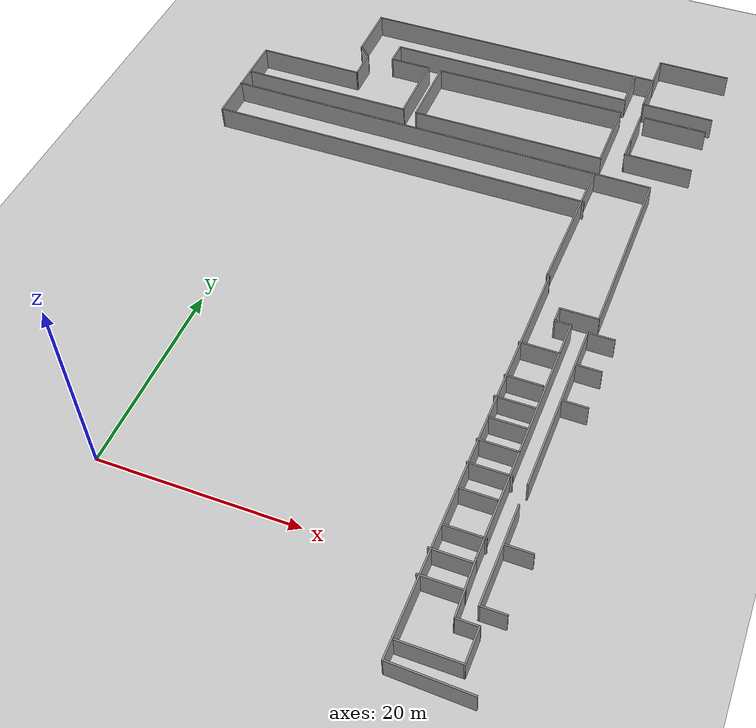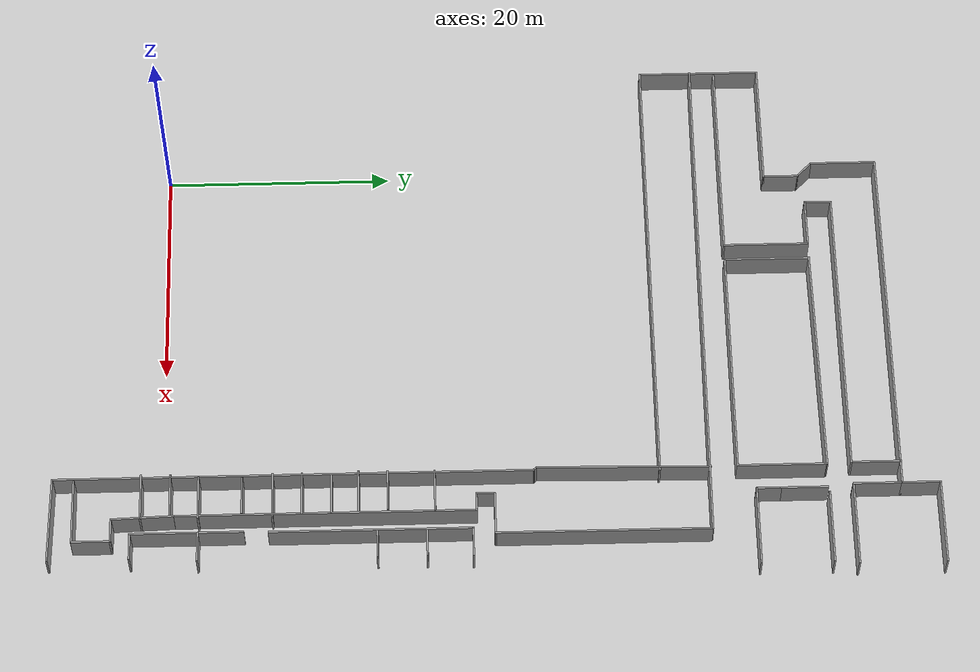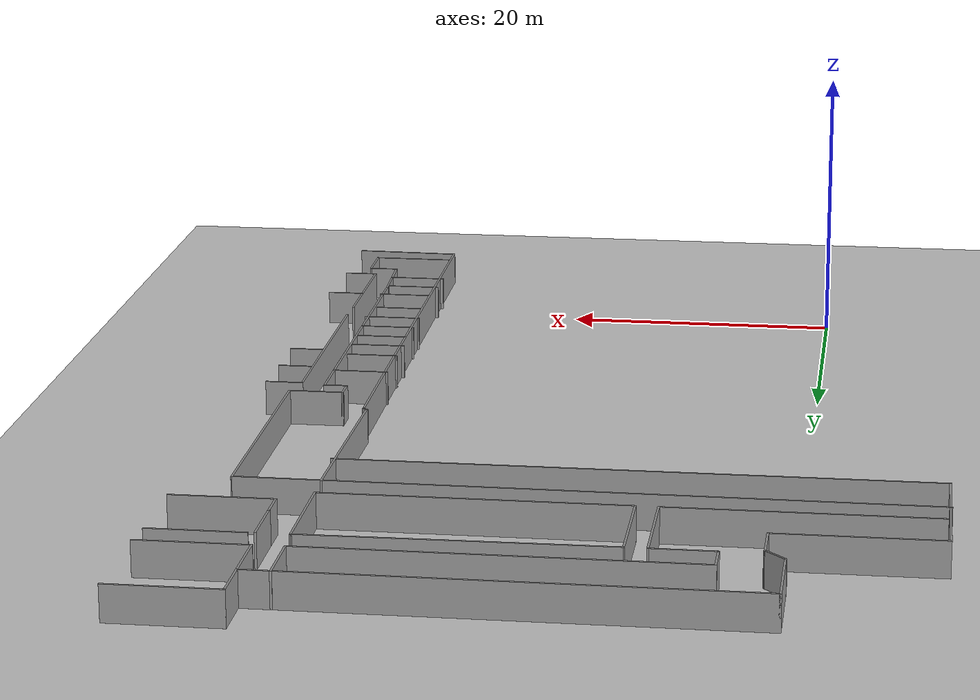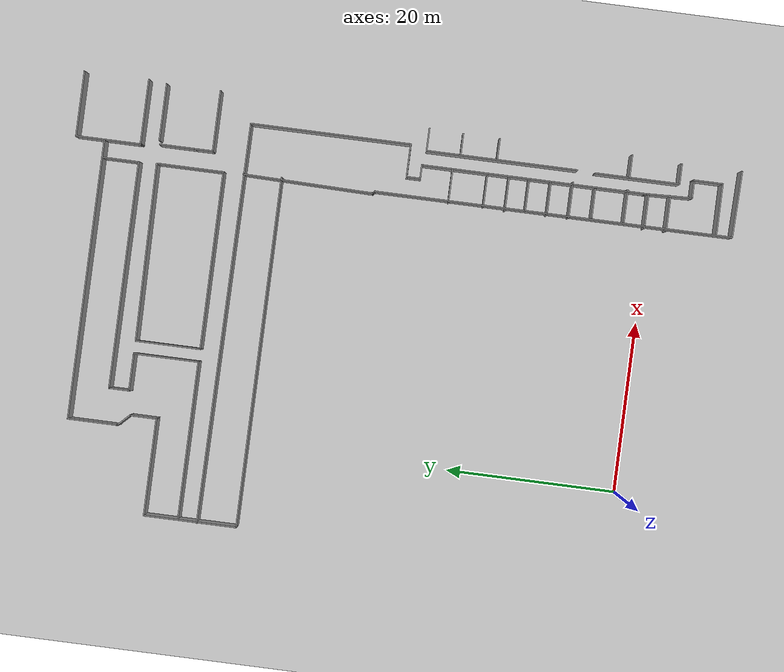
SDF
<sdf version="1.5">
 <world name="default">
  <model name="ground_plane">
   <static>1</static>
   <link name="link">
    <collision name="collision">
     <geometry><plane><normal>0 0 1</normal><size>100 100</size></plane></geometry>
     <surface><friction><ode><mu>100</mu><mu2>50</mu2></ode></friction></surface>
    </collision>
    <visual name="visual">
     <cast_shadows>0</cast_shadows>
     <geometry><plane><normal>0 0 1</normal><size>100 100</size></plane></geometry>
     <material>
      <script><uri>file://media/materials/scripts/gazebo.material</uri><name>Gazebo/Grey</name></script>
     </material>
    </visual>
   </link>
  </model>
  <model name="Wean4Complete">
   <pose>41 33 0 0 -0 0</pose>
   <link name="Wall_127">
    <collision name="Wall_127_Collision">
     <geometry><box><size>2.5 0.15 2.5</size></box></geometry>
     <pose>0 0 1.25 0 -0 0</pose>
    </collision>
    <visual name="Wall_127_Visual">
     <pose>0 0 1.25 0 -0 0</pose>
     <geometry><box><size>2.5 0.15 2.5</size></box></geometry>
     <material>
      <script><uri>file://media/materials/scripts/gazebo.material</uri><name>Gazebo/Grey</name></script>
      <ambient>1 1 1 1</ambient>
     </material>
    </visual>
    <pose>-2.79715 -14.197 0 0 -0 3.14159</pose>
   </link>
   <link name="Wall_129">
    <collision name="Wall_129_Collision">
     <geometry><box><size>2.5 0.15 2.5</size></box></geometry>
     <pose>0 0 1.25 0 -0 0</pose>
    </collision>
    <visual name="Wall_129_Visual">
     <pose>0 0 1.25 0 -0 0</pose>
     <geometry><box><size>2.5 0.15 2.5</size></box></geometry>
     <material>
      <script><uri>file://media/materials/scripts/gazebo.material</uri><name>Gazebo/Grey</name></script>
      <ambient>1 1 1 1</ambient>
     </material>
    </visual>
    <pose>-2.79715 -9.8853 0 0 -0 3.14159</pose>
   </link>
   <link name="Wall_131">
    <collision name="Wall_131_Collision">
     <geometry><box><size>4 0.15 2.5</size></box></geometry>
     <pose>0 0 1.25 0 -0 0</pose>
    </collision>
    <visual name="Wall_131_Visual">
     <pose>0 0 1.25 0 -0 0</pose>
     <geometry><box><size>4 0.15 2.5</size></box></geometry>
     <material>
      <script><uri>file://media/materials/scripts/gazebo.material</uri><name>Gazebo/Grey</name></script>
      <ambient>1 1 1 1</ambient>
     </material>
    </visual>
    <pose>-7.80722 -9.16669 0 0 -0 0</pose>
   </link>
   <link name="Wall_132">
    <collision name="Wall_132_Collision">
     <geometry><box><size>0.15 0.15 2.5</size></box></geometry>
     <pose>0 0 1.25 0 -0 0</pose>
    </collision>
    <visual name="Wall_132_Visual">
     <pose>0 0 1.25 0 -0 0</pose>
     <geometry><box><size>0.15 0.15 2.5</size></box></geometry>
     <material>
      <script><uri>file://media/materials/scripts/gazebo.material</uri><name>Gazebo/Grey</name></script>
      <ambient>1 1 1 1</ambient>
     </material>
    </visual>
    <pose>-5.88222 -9.16669 0 0 -0 0</pose>
   </link>
   <link name="Wall_134">
    <collision name="Wall_134_Collision">
     <geometry><box><size>3.75 0.15 2.5</size></box></geometry>
     <pose>0 0 1.25 0 -0 0</pose>
    </collision>
    <visual name="Wall_134_Visual">
     <pose>0 0 1.25 0 -0 0</pose>
     <geometry><box><size>3.75 0.15 2.5</size></box></geometry>
     <material>
      <script><uri>file://media/materials/scripts/gazebo.material</uri><name>Gazebo/Grey</name></script>
      <ambient>1 1 1 1</ambient>
     </material>
    </visual>
    <pose>-7.93222 -13.2731 0 0 -0 0</pose>
   </link>
   <link name="Wall_136">
    <collision name="Wall_136_Collision">
     <geometry><box><size>4 0.15 2.5</size></box></geometry>
     <pose>0 0 1.25 0 -0 0</pose>
    </collision>
    <visual name="Wall_136_Visual">
     <pose>0 0 1.25 0 -0 0</pose>
     <geometry><box><size>4 0.15 2.5</size></box></geometry>
     <material>
      <script><uri>file://media/materials/scripts/gazebo.material</uri><name>Gazebo/Grey</name></script>
      <ambient>1 1 1 1</ambient>
     </material>
    </visual>
    <pose>-7.90988 -15.8395 0 0 -0 0</pose>
   </link>
   <link name="Wall_138">
    <collision name="Wall_138_Collision">
     <geometry><box><size>3.75 0.15 2.5</size></box></geometry>
     <pose>0 0 1.25 0 -0 0</pose>
    </collision>
    <visual name="Wall_138_Visual">
     <pose>0 0 1.25 0 -0 0</pose>
     <geometry><box><size>3.75 0.15 2.5</size></box></geometry>
     <material>
      <script><uri>file://media/materials/scripts/gazebo.material</uri><name>Gazebo/Grey</name></script>
      <ambient>1 1 1 1</ambient>
     </material>
    </visual>
    <pose>-7.7269 -18.2007 0 0 -0 0</pose>
   </link>
   <link name="Wall_140">
    <collision name="Wall_140_Collision">
     <geometry><box><size>4.25 0.15 2.5</size></box></geometry>
     <pose>0 0 1.25 0 -0 0</pose>
    </collision>
    <visual name="Wall_140_Visual">
     <pose>0 0 1.25 0 -0 0</pose>
     <geometry><box><size>4.25 0.15 2.5</size></box></geometry>
     <material>
      <script><uri>file://media/materials/scripts/gazebo.material</uri><name>Gazebo/Grey</name></script>
      <ambient>1 1 1 1</ambient>
     </material>
    </visual>
    <pose>-7.68222 -23.3336 0 0 -0 0</pose>
   </link>
   <link name="Wall_142">
    <collision name="Wall_142_Collision">
     <geometry><box><size>4 0.15 2.5</size></box></geometry>
     <pose>0 0 1.25 0 -0 0</pose>
    </collision>
    <visual name="Wall_142_Visual">
     <pose>0 0 1.25 0 -0 0</pose>
     <geometry><box><size>4 0.15 2.5</size></box></geometry>
     <material>
      <script><uri>file://media/materials/scripts/gazebo.material</uri><name>Gazebo/Grey</name></script>
      <ambient>1 1 1 1</ambient>
     </material>
    </visual>
    <pose>-7.80722 -20.7672 0 0 -0 0</pose>
   </link>
   <link name="Wall_144">
    <collision name="Wall_144_Collision">
     <geometry><box><size>4 0.15 2.5</size></box></geometry>
     <pose>0 0 1.25 0 -0 0</pose>
    </collision>
    <visual name="Wall_144_Visual">
     <pose>0 0 1.25 0 -0 0</pose>
     <geometry><box><size>4 0.15 2.5</size></box></geometry>
     <material>
      <script><uri>file://media/materials/scripts/gazebo.material</uri><name>Gazebo/Grey</name></script>
      <ambient>1 1 1 1</ambient>
     </material>
    </visual>
    <pose>-7.6019 -29.8012 0 0 -0 0</pose>
   </link>
   <link name="Wall_146">
    <collision name="Wall_146_Collision">
     <geometry><box><size>3.5 0.15 2.5</size></box></geometry>
     <pose>0 0 1.25 0 -0 0</pose>
    </collision>
    <visual name="Wall_146_Visual">
     <pose>0 0 1.25 0 -0 0</pose>
     <geometry><box><size>3.5 0.15 2.5</size></box></geometry>
     <material>
      <script><uri>file://media/materials/scripts/gazebo.material</uri><name>Gazebo/Grey</name></script>
      <ambient>1 1 1 1</ambient>
     </material>
    </visual>
    <pose>-7.74924 -26.0028 0 0 -0 0</pose>
   </link>
   <link name="Wall_148">
    <collision name="Wall_148_Collision">
     <geometry><box><size>4 0.15 2.5</size></box></geometry>
     <pose>0 0 1.25 0 -0 0</pose>
    </collision>
    <visual name="Wall_148_Visual">
     <pose>0 0 1.25 0 -0 0</pose>
     <geometry><box><size>4 0.15 2.5</size></box></geometry>
     <material>
      <script><uri>file://media/materials/scripts/gazebo.material</uri><name>Gazebo/Grey</name></script>
      <ambient>1 1 1 1</ambient>
     </material>
    </visual>
    <pose>-7.90988 -32.265 0 0 -0 0</pose>
   </link>
   <link name="Wall_150">
    <collision name="Wall_150_Collision">
     <geometry><box><size>4.25 0.15 2.5</size></box></geometry>
     <pose>0 0 1.25 0 -0 0</pose>
    </collision>
    <visual name="Wall_150_Visual">
     <pose>0 0 1.25 0 -0 0</pose>
     <geometry><box><size>4.25 0.15 2.5</size></box></geometry>
     <material>
      <script><uri>file://media/materials/scripts/gazebo.material</uri><name>Gazebo/Grey</name></script>
      <ambient>1 1 1 1</ambient>
     </material>
    </visual>
    <pose>-7.78488 -34.8315 0 0 -0 0</pose>
   </link>
   <link name="Wall_157">
    <collision name="Wall_157_Collision">
     <geometry><box><size>2.75 0.15 2.5</size></box></geometry>
     <pose>0 0 1.25 0 -0 0</pose>
    </collision>
    <visual name="Wall_157_Visual">
     <pose>0 0 1.25 0 -0 0</pose>
     <geometry><box><size>2.75 0.15 2.5</size></box></geometry>
     <material>
      <script><uri>file://media/materials/scripts/gazebo.material</uri><name>Gazebo/Grey</name></script>
      <ambient>1 1 1 1</ambient>
     </material>
    </visual>
    <pose>-2.88863 -29.8012 0 0 -0 0</pose>
   </link>
   <link name="Wall_16">
    <collision name="Wall_16_Collision">
     <geometry><box><size>42.25 0.15 2.5</size></box></geometry>
     <pose>0 0 1.25 0 -0 0</pose>
    </collision>
    <visual name="Wall_16_Visual">
     <pose>0 0 1.25 0 -0 0</pose>
     <geometry><box><size>42.25 0.15 2.5</size></box></geometry>
     <material>
      <script><uri>file://media/materials/scripts/gazebo.material</uri><name>Gazebo/Grey</name></script>
      <ambient>1 1 1 1</ambient>
     </material>
    </visual>
    <pose>-9.60806 -21.5344 0 0 -0 1.5708</pose>
   </link>
   <link name="Wall_163">
    <collision name="Wall_163_Collision">
     <geometry><box><size>17.8814 0.15 2.5</size></box></geometry>
     <pose>0 0 1.25 0 -0 0</pose>
    </collision>
    <visual name="Wall_163_Visual">
     <pose>0 0 1.25 0 -0 0</pose>
     <geometry><box><size>17.8814 0.15 2.5</size></box></geometry>
     <material>
      <script><uri>file://media/materials/scripts/gazebo.material</uri><name>Gazebo/Grey</name></script>
      <ambient>1 1 1 1</ambient>
     </material>
    </visual>
    <pose>-4.11949 -14.7473 0 0 -0 1.5708</pose>
   </link>
   <link name="Wall_17">
    <collision name="Wall_17_Collision">
     <geometry><box><size>0.5 0.15 2.5</size></box></geometry>
     <pose>0 0 1.25 0 -0 0</pose>
    </collision>
    <visual name="Wall_17_Visual">
     <pose>0 0 1.25 0 -0 0</pose>
     <geometry><box><size>0.5 0.15 2.5</size></box></geometry>
     <material>
      <script><uri>file://media/materials/scripts/gazebo.material</uri><name>Gazebo/Grey</name></script>
      <ambient>1 1 1 1</ambient>
     </material>
    </visual>
    <pose>-9.73181 -0.360694 0 0 -0 2.35619</pose>
   </link>
   <link name="Wall_37">
    <collision name="Wall_37_Collision">
     <geometry><box><size>19 0.15 2.5</size></box></geometry>
     <pose>0 0 1.25 0 -0 0</pose>
    </collision>
    <visual name="Wall_37_Visual">
     <pose>0 0 1.25 0 -0 0</pose>
     <geometry><box><size>19 0.15 2.5</size></box></geometry>
     <material>
      <script><uri>file://media/materials/scripts/gazebo.material</uri><name>Gazebo/Grey</name></script>
      <ambient>1 1 1 1</ambient>
     </material>
    </visual>
    <pose>-3.59519 5.47964 0 0 0 -1.5708</pose>
   </link>
   <link name="Wall_38">
    <collision name="Wall_38_Collision">
     <geometry><box><size>4 0.15 2.5</size></box></geometry>
     <pose>0 0 1.25 0 -0 0</pose>
    </collision>
    <visual name="Wall_38_Visual">
     <pose>0 0 1.25 0 -0 0</pose>
     <geometry><box><size>4 0.15 2.5</size></box></geometry>
     <material>
      <script><uri>file://media/materials/scripts/gazebo.material</uri><name>Gazebo/Grey</name></script>
      <ambient>1 1 1 1</ambient>
     </material>
    </visual>
    <pose>-5.52019 -3.94536 0 0 -0 3.14159</pose>
   </link>
   <link name="Wall_39">
    <collision name="Wall_39_Collision">
     <geometry><box><size>1.75 0.15 2.5</size></box></geometry>
     <pose>0 0 1.25 0 -0 0</pose>
    </collision>
    <visual name="Wall_39_Visual">
     <pose>0 0 1.25 0 -0 0</pose>
     <geometry><box><size>1.75 0.15 2.5</size></box></geometry>
     <material>
      <script><uri>file://media/materials/scripts/gazebo.material</uri><name>Gazebo/Grey</name></script>
      <ambient>1 1 1 1</ambient>
     </material>
    </visual>
    <pose>-7.44519 -4.74536 0 0 0 -1.5708</pose>
   </link>
   <link name="Wall_40">
    <collision name="Wall_40_Collision">
     <geometry><box><size>1.75 0.15 2.5</size></box></geometry>
     <pose>0 0 1.25 0 -0 0</pose>
    </collision>
    <visual name="Wall_40_Visual">
     <pose>0 0 1.25 0 -0 0</pose>
     <geometry><box><size>1.75 0.15 2.5</size></box></geometry>
     <material>
      <script><uri>file://media/materials/scripts/gazebo.material</uri><name>Gazebo/Grey</name></script>
      <ambient>1 1 1 1</ambient>
     </material>
    </visual>
    <pose>-6.64519 -5.54536 0 0 -0 0</pose>
   </link>
   <link name="Wall_41">
    <collision name="Wall_41_Collision">
     <geometry><box><size>26.5 0.15 2.5</size></box></geometry>
     <pose>0 0 1.25 0 -0 0</pose>
    </collision>
    <visual name="Wall_41_Visual">
     <pose>0 0 1.25 0 -0 0</pose>
     <geometry><box><size>26.5 0.15 2.5</size></box></geometry>
     <material>
      <script><uri>file://media/materials/scripts/gazebo.material</uri><name>Gazebo/Grey</name></script>
      <ambient>1 1 1 1</ambient>
     </material>
    </visual>
    <pose>-5.84519 -18.7204 0 0 0 -1.5708</pose>
   </link>
   <link name="Wall_43">
    <collision name="Wall_43_Collision">
     <geometry><box><size>6 0.15 2.5</size></box></geometry>
     <pose>0 0 1.25 0 -0 0</pose>
    </collision>
    <visual name="Wall_43_Visual">
     <pose>0 0 1.25 0 -0 0</pose>
     <geometry><box><size>6 0.15 2.5</size></box></geometry>
     <material>
      <script><uri>file://media/materials/scripts/gazebo.material</uri><name>Gazebo/Grey</name></script>
      <ambient>1 1 1 1</ambient>
     </material>
    </visual>
    <pose>-6.47266 -40.7098 0 0 -0 0</pose>
   </link>
   <link name="Wall_44">
    <collision name="Wall_44_Collision">
     <geometry><box><size>3.5 0.15 2.5</size></box></geometry>
     <pose>0 0 1.25 0 -0 0</pose>
    </collision>
    <visual name="Wall_44_Visual">
     <pose>0 0 1.25 0 -0 0</pose>
     <geometry><box><size>3.5 0.15 2.5</size></box></geometry>
     <material>
      <script><uri>file://media/materials/scripts/gazebo.material</uri><name>Gazebo/Grey</name></script>
      <ambient>1 1 1 1</ambient>
     </material>
    </visual>
    <pose>-3.54766 -39.0348 0 0 -0 1.5708</pose>
   </link>
   <link name="Wall_45">
    <collision name="Wall_45_Collision">
     <geometry><box><size>2.25 0.15 2.5</size></box></geometry>
     <pose>0 0 1.25 0 -0 0</pose>
    </collision>
    <visual name="Wall_45_Visual">
     <pose>0 0 1.25 0 -0 0</pose>
     <geometry><box><size>2.25 0.15 2.5</size></box></geometry>
     <material>
      <script><uri>file://media/materials/scripts/gazebo.material</uri><name>Gazebo/Grey</name></script>
      <ambient>1 1 1 1</ambient>
     </material>
    </visual>
    <pose>-4.59766 -37.3598 0 0 -0 3.14159</pose>
   </link>
   <link name="Wall_46">
    <collision name="Wall_46_Collision">
     <geometry><box><size>5.618 0.15 2.5</size></box></geometry>
     <pose>0 0 1.25 0 -0 0</pose>
    </collision>
    <visual name="Wall_46_Visual">
     <pose>0 0 1.25 0 -0 0</pose>
     <geometry><box><size>5.618 0.15 2.5</size></box></geometry>
     <material>
      <script><uri>file://media/materials/scripts/gazebo.material</uri><name>Gazebo/Grey</name></script>
      <ambient>1 1 1 1</ambient>
     </material>
    </visual>
    <pose>-5.74643 -34.6276 0 0 -0 1.60693</pose>
   </link>
   <link name="Wall_48">
    <collision name="Wall_48_Collision">
     <geometry><box><size>15.3834 0.15 2.5</size></box></geometry>
     <pose>0 0 1.25 0 -0 0</pose>
    </collision>
    <visual name="Wall_48_Visual">
     <pose>0 0 1.25 0 -0 0</pose>
     <geometry><box><size>15.3834 0.15 2.5</size></box></geometry>
     <material>
      <script><uri>file://media/materials/scripts/gazebo.material</uri><name>Gazebo/Grey</name></script>
      <ambient>1 1 1 1</ambient>
     </material>
    </visual>
    <pose>-9.71588 7.37848 0 0 0 -1.58913</pose>
   </link>
   <link name="Wall_50">
    <collision name="Wall_50_Collision">
     <geometry><box><size>41.25 0.15 2.5</size></box></geometry>
     <pose>0 0 1.25 0 -0 0</pose>
    </collision>
    <visual name="Wall_50_Visual">
     <pose>0 0 1.25 0 -0 0</pose>
     <geometry><box><size>41.25 0.15 2.5</size></box></geometry>
     <material>
      <script><uri>file://media/materials/scripts/gazebo.material</uri><name>Gazebo/Grey</name></script>
      <ambient>1 1 1 1</ambient>
     </material>
    </visual>
    <pose>-29.9742 10.5439 0 0 -0 3.14159</pose>
   </link>
   <link name="Wall_51">
    <collision name="Wall_51_Collision">
     <geometry><box><size>11 0.15 2.5</size></box></geometry>
     <pose>0 0 1.25 0 -0 0</pose>
    </collision>
    <visual name="Wall_51_Visual">
     <pose>0 0 1.25 0 -0 0</pose>
     <geometry><box><size>11 0.15 2.5</size></box></geometry>
     <material>
      <script><uri>file://media/materials/scripts/gazebo.material</uri><name>Gazebo/Grey</name></script>
      <ambient>1 1 1 1</ambient>
     </material>
    </visual>
    <pose>-50.5242 15.9688 0 0 -0 1.5708</pose>
   </link>
   <link name="Wall_52">
    <collision name="Wall_52_Collision">
     <geometry><box><size>11.5 0.15 2.5</size></box></geometry>
     <pose>0 0 1.25 0 -0 0</pose>
    </collision>
    <visual name="Wall_52_Visual">
     <pose>0 0 1.25 0 -0 0</pose>
     <geometry><box><size>11.5 0.15 2.5</size></box></geometry>
     <material>
      <script><uri>file://media/materials/scripts/gazebo.material</uri><name>Gazebo/Grey</name></script>
      <ambient>1 1 1 1</ambient>
     </material>
    </visual>
    <pose>-44.8492 21.3939 0 0 -0 0</pose>
   </link>
   <link name="Wall_53">
    <collision name="Wall_53_Collision">
     <geometry><box><size>3.25 0.15 2.5</size></box></geometry>
     <pose>0 0 1.25 0 -0 0</pose>
    </collision>
    <visual name="Wall_53_Visual">
     <pose>0 0 1.25 0 -0 0</pose>
     <geometry><box><size>3.25 0.15 2.5</size></box></geometry>
     <material>
      <script><uri>file://media/materials/scripts/gazebo.material</uri><name>Gazebo/Grey</name></script>
      <ambient>1 1 1 1</ambient>
     </material>
    </visual>
    <pose>-39.1742 22.9439 0 0 -0 1.5708</pose>
   </link>
   <link name="Wall_54">
    <collision name="Wall_54_Collision">
     <geometry><box><size>2 0.15 2.5</size></box></geometry>
     <pose>0 0 1.25 0 -0 0</pose>
    </collision>
    <visual name="Wall_54_Visual">
     <pose>0 0 1.25 0 -0 0</pose>
     <geometry><box><size>2 0.15 2.5</size></box></geometry>
     <material>
      <script><uri>file://media/materials/scripts/gazebo.material</uri><name>Gazebo/Grey</name></script>
      <ambient>1 1 1 1</ambient>
     </material>
    </visual>
    <pose>-39.8283 25.1479 0 0 -0 2.35619</pose>
   </link>
   <link name="Wall_55">
    <collision name="Wall_55_Collision">
     <geometry><box><size>6 0.15 2.5</size></box></geometry>
     <pose>0 0 1.25 0 -0 0</pose>
    </collision>
    <visual name="Wall_55_Visual">
     <pose>0 0 1.25 0 -0 0</pose>
     <geometry><box><size>6 0.15 2.5</size></box></geometry>
     <material>
      <script><uri>file://media/materials/scripts/gazebo.material</uri><name>Gazebo/Grey</name></script>
      <ambient>1 1 1 1</ambient>
     </material>
    </visual>
    <pose>-40.4824 28.727 0 0 -0 1.5708</pose>
   </link>
   <link name="Wall_56">
    <collision name="Wall_56_Collision">
     <geometry><box><size>33 0.15 2.5</size></box></geometry>
     <pose>0 0 1.25 0 -0 0</pose>
    </collision>
    <visual name="Wall_56_Visual">
     <pose>0 0 1.25 0 -0 0</pose>
     <geometry><box><size>33 0.15 2.5</size></box></geometry>
     <material>
      <script><uri>file://media/materials/scripts/gazebo.material</uri><name>Gazebo/Grey</name></script>
      <ambient>1 1 1 1</ambient>
     </material>
    </visual>
    <pose>-24.0574 31.652 0 0 -0 0</pose>
   </link>
   <link name="Wall_57">
    <collision name="Wall_57_Collision">
     <geometry><box><size>3.5 0.15 2.5</size></box></geometry>
     <pose>0 0 1.25 0 -0 0</pose>
    </collision>
    <visual name="Wall_57_Visual">
     <pose>0 0 1.25 0 -0 0</pose>
     <geometry><box><size>3.5 0.15 2.5</size></box></geometry>
     <material>
      <script><uri>file://media/materials/scripts/gazebo.material</uri><name>Gazebo/Grey</name></script>
      <ambient>1 1 1 1</ambient>
     </material>
    </visual>
    <pose>-7.63239 33.327 0 0 -0 1.5708</pose>
   </link>
   <link name="Wall_58">
    <collision name="Wall_58_Collision">
     <geometry><box><size>7.75 0.15 2.5</size></box></geometry>
     <pose>0 0 1.25 0 -0 0</pose>
    </collision>
    <visual name="Wall_58_Visual">
     <pose>0 0 1.25 0 -0 0</pose>
     <geometry><box><size>7.75 0.15 2.5</size></box></geometry>
     <material>
      <script><uri>file://media/materials/scripts/gazebo.material</uri><name>Gazebo/Grey</name></script>
      <ambient>1 1 1 1</ambient>
     </material>
    </visual>
    <pose>-3.83239 35.002 0 0 -0 0</pose>
   </link>
   <link name="Wall_63">
    <collision name="Wall_63_Collision">
     <geometry><box><size>7.75 0.15 2.5</size></box></geometry>
     <pose>0 0 1.25 0 -0 0</pose>
    </collision>
    <visual name="Wall_63_Visual">
     <pose>0 0 1.25 0 -0 0</pose>
     <geometry><box><size>7.75 0.15 2.5</size></box></geometry>
     <material>
      <script><uri>file://media/materials/scripts/gazebo.material</uri><name>Gazebo/Grey</name></script>
      <ambient>1 1 1 1</ambient>
     </material>
    </visual>
    <pose>-3.83239 27.402 0 0 -0 3.14159</pose>
   </link>
   <link name="Wall_64">
    <collision name="Wall_64_Collision">
     <geometry><box><size>4.25 0.15 2.5</size></box></geometry>
     <pose>0 0 1.25 0 -0 0</pose>
    </collision>
    <visual name="Wall_64_Visual">
     <pose>0 0 1.25 0 -0 0</pose>
     <geometry><box><size>4.25 0.15 2.5</size></box></geometry>
     <material>
      <script><uri>file://media/materials/scripts/gazebo.material</uri><name>Gazebo/Grey</name></script>
      <ambient>1 1 1 1</ambient>
     </material>
    </visual>
    <pose>-7.63239 29.452 0 0 -0 1.5708</pose>
   </link>
   <link name="Wall_66">
    <collision name="Wall_66_Collision">
     <geometry><box><size>4.5 0.15 2.5</size></box></geometry>
     <pose>0 0 1.25 0 -0 0</pose>
    </collision>
    <visual name="Wall_66_Visual">
     <pose>0 0 1.25 0 -0 0</pose>
     <geometry><box><size>4.5 0.15 2.5</size></box></geometry>
     <material>
      <script><uri>file://media/materials/scripts/gazebo.material</uri><name>Gazebo/Grey</name></script>
      <ambient>1 1 1 1</ambient>
     </material>
    </visual>
    <pose>-9.73222 29.5166 0 0 0 -1.5708</pose>
   </link>
   <link name="Wall_67">
    <collision name="Wall_67_Collision">
     <geometry><box><size>26.75 0.15 2.5</size></box></geometry>
     <pose>0 0 1.25 0 -0 0</pose>
    </collision>
    <visual name="Wall_67_Visual">
     <pose>0 0 1.25 0 -0 0</pose>
     <geometry><box><size>26.75 0.15 2.5</size></box></geometry>
     <material>
      <script><uri>file://media/materials/scripts/gazebo.material</uri><name>Gazebo/Grey</name></script>
      <ambient>1 1 1 1</ambient>
     </material>
    </visual>
    <pose>-23.0322 27.3416 0 0 -0 3.14159</pose>
   </link>
   <link name="Wall_68">
    <collision name="Wall_68_Collision">
     <geometry><box><size>2.5 0.15 2.5</size></box></geometry>
     <pose>0 0 1.25 0 -0 0</pose>
    </collision>
    <visual name="Wall_68_Visual">
     <pose>0 0 1.25 0 -0 0</pose>
     <geometry><box><size>2.5 0.15 2.5</size></box></geometry>
     <material>
      <script><uri>file://media/materials/scripts/gazebo.material</uri><name>Gazebo/Grey</name></script>
      <ambient>1 1 1 1</ambient>
     </material>
    </visual>
    <pose>-36.3322 26.1666 0 0 0 -1.5708</pose>
   </link>
   <link name="Wall_69">
    <collision name="Wall_69_Collision">
     <geometry><box><size>4.5 0.15 2.5</size></box></geometry>
     <pose>0 0 1.25 0 -0 0</pose>
    </collision>
    <visual name="Wall_69_Visual">
     <pose>0 0 1.25 0 -0 0</pose>
     <geometry><box><size>4.5 0.15 2.5</size></box></geometry>
     <material>
      <script><uri>file://media/materials/scripts/gazebo.material</uri><name>Gazebo/Grey</name></script>
      <ambient>1 1 1 1</ambient>
     </material>
    </visual>
    <pose>-34.1572 24.9916 0 0 -0 0</pose>
   </link>
   <link name="Wall_70">
    <collision name="Wall_70_Collision">
     <geometry><box><size>7.75 0.15 2.5</size></box></geometry>
     <pose>0 0 1.25 0 -0 0</pose>
    </collision>
    <visual name="Wall_70_Visual">
     <pose>0 0 1.25 0 -0 0</pose>
     <geometry><box><size>7.75 0.15 2.5</size></box></geometry>
     <material>
      <script><uri>file://media/materials/scripts/gazebo.material</uri><name>Gazebo/Grey</name></script>
      <ambient>1 1 1 1</ambient>
     </material>
    </visual>
    <pose>-31.9822 21.1916 0 0 0 -1.5708</pose>
   </link>
   <link name="Wall_71">
    <collision name="Wall_71_Collision">
     <geometry><box><size>18.5 0.15 2.5</size></box></geometry>
     <pose>0 0 1.25 0 -0 0</pose>
    </collision>
    <visual name="Wall_71_Visual">
     <pose>0 0 1.25 0 -0 0</pose>
     <geometry><box><size>18.5 0.15 2.5</size></box></geometry>
     <material>
      <script><uri>file://media/materials/scripts/gazebo.material</uri><name>Gazebo/Grey</name></script>
      <ambient>1 1 1 1</ambient>
     </material>
    </visual>
    <pose>-41.1572 17.3916 0 0 -0 3.14159</pose>
   </link>
   <link name="Wall_73">
    <collision name="Wall_73_Collision">
     <geometry><box><size>47.146 0.15 2.5</size></box></geometry>
     <pose>0 0 1.25 0 -0 0</pose>
    </collision>
    <visual name="Wall_73_Visual">
     <pose>0 0 1.25 0 -0 0</pose>
     <geometry><box><size>47.146 0.15 2.5</size></box></geometry>
     <material>
      <script><uri>file://media/materials/scripts/gazebo.material</uri><name>Gazebo/Grey</name></script>
      <ambient>1 1 1 1</ambient>
     </material>
    </visual>
    <pose>-27.0929 15.0341 0 0 0 -0.005508</pose>
   </link>
   <link name="Wall_75">
    <collision name="Wall_75_Collision">
     <geometry><box><size>8 0.15 2.5</size></box></geometry>
     <pose>0 0 1.25 0 -0 0</pose>
    </collision>
    <visual name="Wall_75_Visual">
     <pose>0 0 1.25 0 -0 0</pose>
     <geometry><box><size>8 0.15 2.5</size></box></geometry>
     <material>
      <script><uri>file://media/materials/scripts/gazebo.material</uri><name>Gazebo/Grey</name></script>
      <ambient>1 1 1 1</ambient>
     </material>
    </visual>
    <pose>-9.62956 21.2991 0 0 0 -1.5708</pose>
   </link>
   <link name="Wall_76">
    <collision name="Wall_76_Collision">
     <geometry><box><size>21 0.15 2.5</size></box></geometry>
     <pose>0 0 1.25 0 -0 0</pose>
    </collision>
    <visual name="Wall_76_Visual">
     <pose>0 0 1.25 0 -0 0</pose>
     <geometry><box><size>21 0.15 2.5</size></box></geometry>
     <material>
      <script><uri>file://media/materials/scripts/gazebo.material</uri><name>Gazebo/Grey</name></script>
      <ambient>1 1 1 1</ambient>
     </material>
    </visual>
    <pose>-20.0546 17.3741 0 0 -0 3.14159</pose>
   </link>
   <link name="Wall_77">
    <collision name="Wall_77_Collision">
     <geometry><box><size>7.75 0.15 2.5</size></box></geometry>
     <pose>0 0 1.25 0 -0 0</pose>
    </collision>
    <visual name="Wall_77_Visual">
     <pose>0 0 1.25 0 -0 0</pose>
     <geometry><box><size>7.75 0.15 2.5</size></box></geometry>
     <material>
      <script><uri>file://media/materials/scripts/gazebo.material</uri><name>Gazebo/Grey</name></script>
      <ambient>1 1 1 1</ambient>
     </material>
    </visual>
    <pose>-30.4796 21.1741 0 0 -0 1.5708</pose>
   </link>
   <link name="Wall_78">
    <collision name="Wall_78_Collision">
     <geometry><box><size>21.0015 0.15 2.5</size></box></geometry>
     <pose>0 0 1.25 0 -0 0</pose>
    </collision>
    <visual name="Wall_78_Visual">
     <pose>0 0 1.25 0 -0 0</pose>
     <geometry><box><size>21.0015 0.15 2.5</size></box></geometry>
     <material>
      <script><uri>file://media/materials/scripts/gazebo.material</uri><name>Gazebo/Grey</name></script>
      <ambient>1 1 1 1</ambient>
     </material>
    </visual>
    <pose>-20.0546 25.0991 0 0 -0 0.01199</pose>
   </link>
   <link name="Wall_80">
    <collision name="Wall_80_Collision">
     <geometry><box><size>4.25 0.15 2.5</size></box></geometry>
     <pose>0 0 1.25 0 -0 0</pose>
    </collision>
    <visual name="Wall_80_Visual">
     <pose>0 0 1.25 0 -0 0</pose>
     <geometry><box><size>4.25 0.15 2.5</size></box></geometry>
     <material>
      <script><uri>file://media/materials/scripts/gazebo.material</uri><name>Gazebo/Grey</name></script>
      <ambient>1 1 1 1</ambient>
     </material>
    </visual>
    <pose>-7.37106 23.0714 0 0 0 -1.5708</pose>
   </link>
   <link name="Wall_81">
    <collision name="Wall_81_Collision">
     <geometry><box><size>2.25 0.15 2.5</size></box></geometry>
     <pose>0 0 1.25 0 -0 0</pose>
    </collision>
    <visual name="Wall_81_Visual">
     <pose>0 0 1.25 0 -0 0</pose>
     <geometry><box><size>2.25 0.15 2.5</size></box></geometry>
     <material>
      <script><uri>file://media/materials/scripts/gazebo.material</uri><name>Gazebo/Grey</name></script>
      <ambient>1 1 1 1</ambient>
     </material>
    </visual>
    <pose>-7.37106 19.9714 0 0 0 -1.5708</pose>
   </link>
   <link name="Wall_82">
    <collision name="Wall_82_Collision">
     <geometry><box><size>7.25 0.15 2.5</size></box></geometry>
     <pose>0 0 1.25 0 -0 0</pose>
    </collision>
    <visual name="Wall_82_Visual">
     <pose>0 0 1.25 0 -0 0</pose>
     <geometry><box><size>7.25 0.15 2.5</size></box></geometry>
     <material>
      <script><uri>file://media/materials/scripts/gazebo.material</uri><name>Gazebo/Grey</name></script>
      <ambient>1 1 1 1</ambient>
     </material>
    </visual>
    <pose>-3.82106 18.9214 0 0 -0 0</pose>
   </link>
   <link name="Wall_84">
    <collision name="Wall_84_Collision">
     <geometry><box><size>6.75 0.15 2.5</size></box></geometry>
     <pose>0 0 1.25 0 -0 0</pose>
    </collision>
    <visual name="Wall_84_Visual">
     <pose>0 0 1.25 0 -0 0</pose>
     <geometry><box><size>6.75 0.15 2.5</size></box></geometry>
     <material>
      <script><uri>file://media/materials/scripts/gazebo.material</uri><name>Gazebo/Grey</name></script>
      <ambient>1 1 1 1</ambient>
     </material>
    </visual>
    <pose>-3.57106 25.2714 0 0 -0 3.14159</pose>
   </link>
   <link name="Wall_88">
    <collision name="Wall_88_Collision">
     <geometry><box><size>2.75 0.15 2.5</size></box></geometry>
     <pose>0 0 1.25 0 -0 0</pose>
    </collision>
    <visual name="Wall_88_Visual">
     <pose>0 0 1.25 0 -0 0</pose>
     <geometry><box><size>2.75 0.15 2.5</size></box></geometry>
     <material>
      <script><uri>file://media/materials/scripts/gazebo.material</uri><name>Gazebo/Grey</name></script>
      <ambient>1 1 1 1</ambient>
     </material>
    </visual>
    <pose>-2.81949 -5.8816 0 0 -0 3.14159</pose>
   </link>
   <link name="Wall_91">
    <collision name="Wall_91_Collision">
     <geometry><box><size>10 0.15 2.5</size></box></geometry>
     <pose>0 0 1.25 0 -0 0</pose>
    </collision>
    <visual name="Wall_91_Visual">
     <pose>0 0 1.25 0 -0 0</pose>
     <geometry><box><size>10 0.15 2.5</size></box></geometry>
     <material>
      <script><uri>file://media/materials/scripts/gazebo.material</uri><name>Gazebo/Grey</name></script>
      <ambient>1 1 1 1</ambient>
     </material>
    </visual>
    <pose>-4.19957 -30.7648 0 0 0 -1.5708</pose>
   </link>
   <link name="Wall_92">
    <collision name="Wall_92_Collision">
     <geometry><box><size>2.5 0.15 2.5</size></box></geometry>
     <pose>0 0 1.25 0 -0 0</pose>
    </collision>
    <visual name="Wall_92_Visual">
     <pose>0 0 1.25 0 -0 0</pose>
     <geometry><box><size>2.5 0.15 2.5</size></box></geometry>
     <material>
      <script><uri>file://media/materials/scripts/gazebo.material</uri><name>Gazebo/Grey</name></script>
      <ambient>1 1 1 1</ambient>
     </material>
    </visual>
    <pose>-3.02457 -35.6898 0 0 -0 0</pose>
   </link>
   <link name="Wall_94">
    <collision name="Wall_94_Collision">
     <geometry><box><size>7.91122 0.15 2.5</size></box></geometry>
     <pose>0 0 1.25 0 -0 0</pose>
    </collision>
    <visual name="Wall_94_Visual">
     <pose>0 0 1.25 0 -0 0</pose>
     <geometry><box><size>7.91122 0.15 2.5</size></box></geometry>
     <material>
      <script><uri>file://media/materials/scripts/gazebo.material</uri><name>Gazebo/Grey</name></script>
      <ambient>1 1 1 1</ambient>
     </material>
    </visual>
    <pose>-5.72881 -42.6871 0 0 -0 3.11513</pose>
   </link>
   <static>1</static>
  </model>
 </world>
</sdf>
